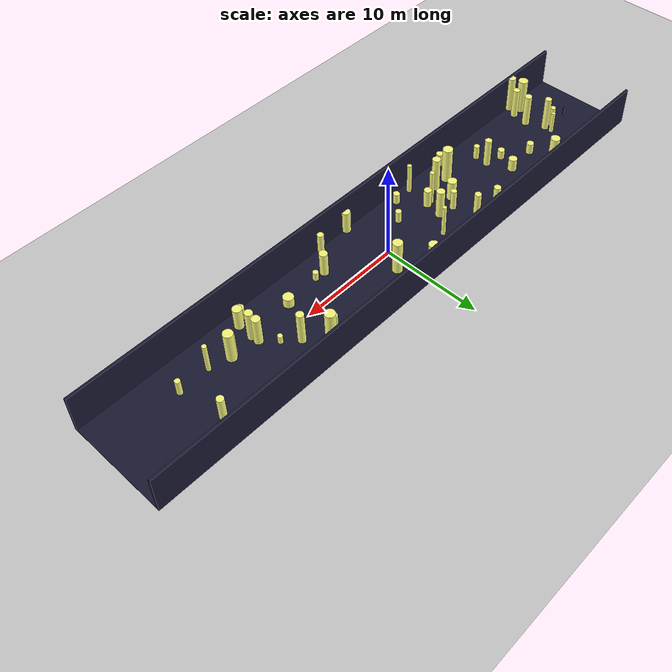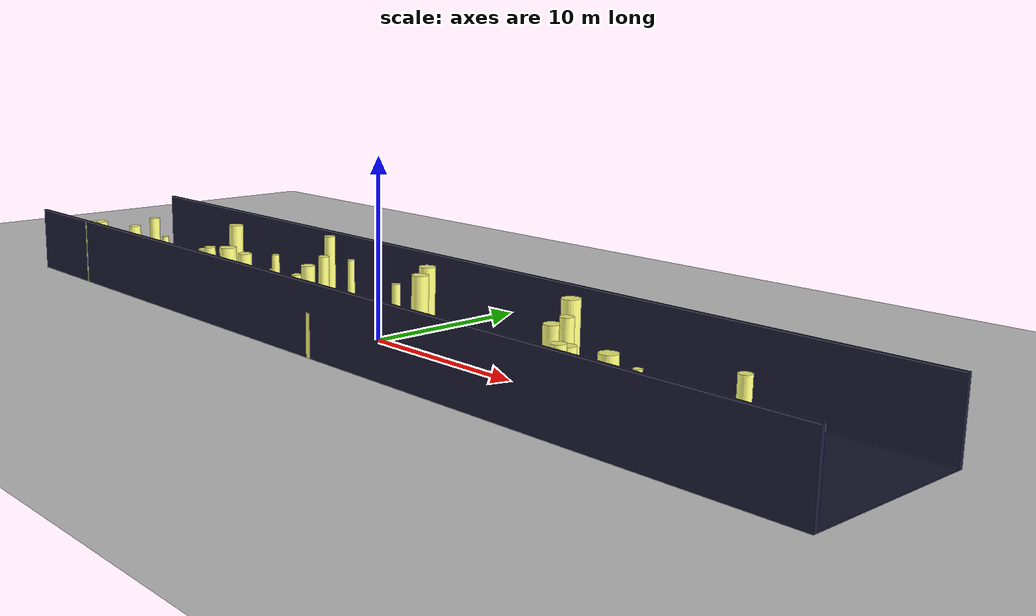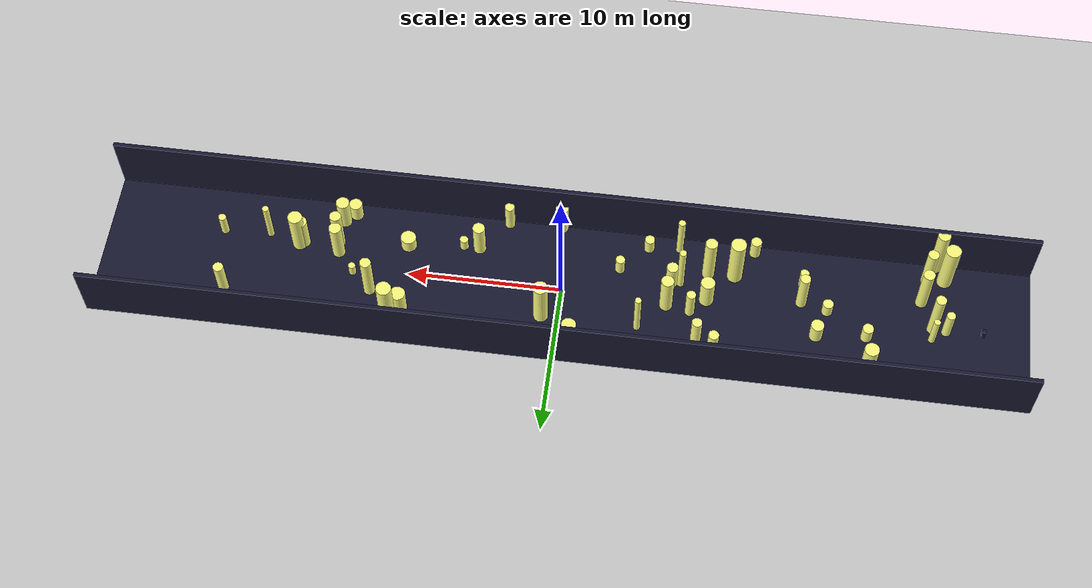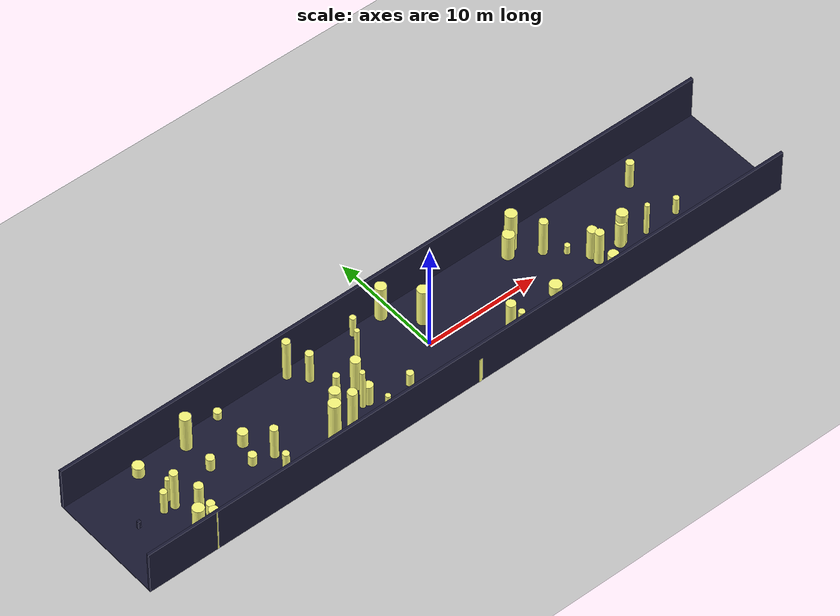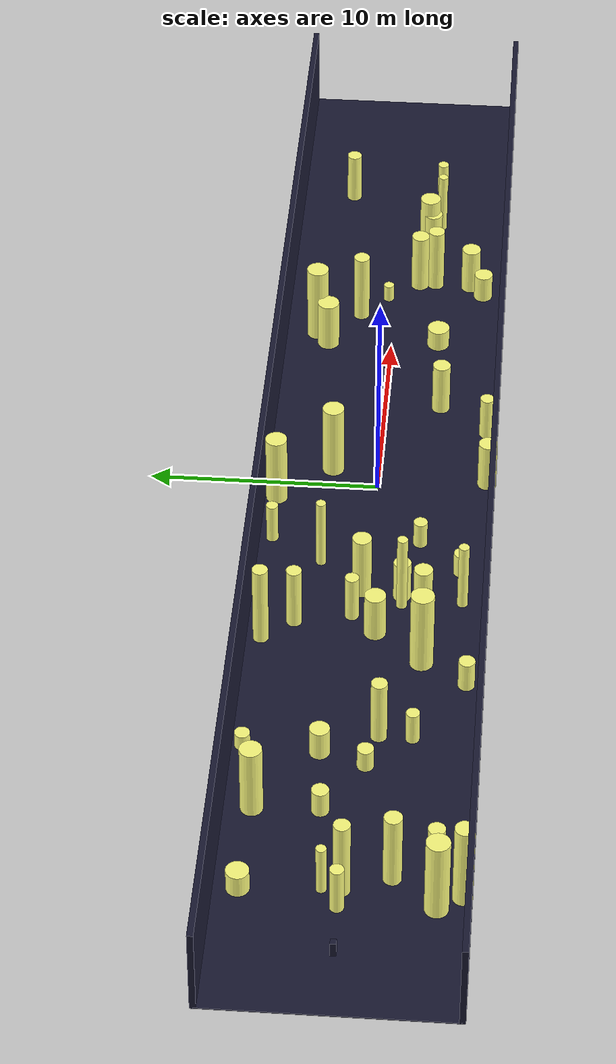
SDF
<?xml version="1.0"?>
<sdf version="1.4">
  <world name="default">
    <gui>
      <camera name="user_camera">
        <pose>-20 -30 40 0 0.66 0.83</pose>
      </camera>
    </gui>
    <include>
      <uri>model://ground_plane</uri>
    </include>
    <include>
      <uri>model://sun</uri>
    </include>
    <scene>
      <shadows>0</shadows>
    </scene>
    <model name="forest">
      <static>true</static>
      <link name="cylinder0">
        <pose>-24.68209057322628 0.03149215675984607 1.0975716134562221 0 0 0 </pose>
        <visual name="visual">
          <geometry>
            <cylinder>
              <radius>0.28339743306230253</radius>
              <length>2.1951432269124442</length>
            </cylinder>
          </geometry>
          <material>
            <ambient>0.6 0.6 0.6 1</ambient>
            <diffuse>1 1 0.5 1</diffuse>
            <specular>0 0 0</specular>
            <emissive>0 0 0 1</emissive>
          </material>
        </visual>
        <collision name="collision">
          <geometry>
            <cylinder>
              <radius>0.28339743306230253</radius>
              <length>2.1951432269124442</length>
            </cylinder>
          </geometry>
          <max_contacts>0</max_contacts>
        </collision>
      </link>
      <link name="cylinder1">
        <pose>14.812804317803192 -1.8058272760618967 1.5895208494235133 0 0 0 </pose>
        <visual name="visual">
          <geometry>
            <cylinder>
              <radius>0.3730601491276073</radius>
              <length>3.1790416988470267</length>
            </cylinder>
          </geometry>
          <material>
            <ambient>0.6 0.6 0.6 1</ambient>
            <diffuse>1 1 0.5 1</diffuse>
            <specular>0 0 0</specular>
            <emissive>0 0 0 1</emissive>
          </material>
        </visual>
        <collision name="collision">
          <geometry>
            <cylinder>
              <radius>0.3730601491276073</radius>
              <length>3.1790416988470267</length>
            </cylinder>
          </geometry>
          <max_contacts>0</max_contacts>
        </collision>
      </link>
      <link name="cylinder2">
        <pose>-19.662361147899844 1.042955078648066 0.617415073956711 0 0 0 </pose>
        <visual name="visual">
          <geometry>
            <cylinder>
              <radius>0.3552425914240961</radius>
              <length>1.234830147913422</length>
            </cylinder>
          </geometry>
          <material>
            <ambient>0.6 0.6 0.6 1</ambient>
            <diffuse>1 1 0.5 1</diffuse>
            <specular>0 0 0</specular>
            <emissive>0 0 0 1</emissive>
          </material>
        </visual>
        <collision name="collision">
          <geometry>
            <cylinder>
              <radius>0.3552425914240961</radius>
              <length>1.234830147913422</length>
            </cylinder>
          </geometry>
          <max_contacts>0</max_contacts>
        </collision>
      </link>
      <link name="cylinder3">
        <pose>-9.30893673339363 -2.4223670456150117 1.8579170193508763 0 0 0 </pose>
        <visual name="visual">
          <geometry>
            <cylinder>
              <radius>0.39260315202224394</radius>
              <length>3.7158340387017526</length>
            </cylinder>
          </geometry>
          <material>
            <ambient>0.6 0.6 0.6 1</ambient>
            <diffuse>1 1 0.5 1</diffuse>
            <specular>0 0 0</specular>
            <emissive>0 0 0 1</emissive>
          </material>
        </visual>
        <collision name="collision">
          <geometry>
            <cylinder>
              <radius>0.39260315202224394</radius>
              <length>3.7158340387017526</length>
            </cylinder>
          </geometry>
          <max_contacts>0</max_contacts>
        </collision>
      </link>
      <link name="cylinder4">
        <pose>-16.471168768786697 1.3123319694057143 0.710167357029526 0 0 0 </pose>
        <visual name="visual">
          <geometry>
            <cylinder>
              <radius>0.4188599328273058</radius>
              <length>1.420334714059052</length>
            </cylinder>
          </geometry>
          <material>
            <ambient>0.6 0.6 0.6 1</ambient>
            <diffuse>1 1 0.5 1</diffuse>
            <specular>0 0 0</specular>
            <emissive>0 0 0 1</emissive>
          </material>
        </visual>
        <collision name="collision">
          <geometry>
            <cylinder>
              <radius>0.4188599328273058</radius>
              <length>1.420334714059052</length>
            </cylinder>
          </geometry>
          <max_contacts>0</max_contacts>
        </collision>
      </link>
      <link name="cylinder5">
        <pose>-11.017880960898497 -2.4814989270715704 1.9169428343375152 0 0 0 </pose>
        <visual name="visual">
          <geometry>
            <cylinder>
              <radius>0.4923476053995425</radius>
              <length>3.8338856686750304</length>
            </cylinder>
          </geometry>
          <material>
            <ambient>0.6 0.6 0.6 1</ambient>
            <diffuse>1 1 0.5 1</diffuse>
            <specular>0 0 0</specular>
            <emissive>0 0 0 1</emissive>
          </material>
        </visual>
        <collision name="collision">
          <geometry>
            <cylinder>
              <radius>0.4923476053995425</radius>
              <length>3.8338856686750304</length>
            </cylinder>
          </geometry>
          <max_contacts>0</max_contacts>
        </collision>
      </link>
      <link name="cylinder6">
        <pose>14.062974609296575 -4.0686457576338055 0.6735063992449166 0 0 0 </pose>
        <visual name="visual">
          <geometry>
            <cylinder>
              <radius>0.41914841630555427</radius>
              <length>1.3470127984898332</length>
            </cylinder>
          </geometry>
          <material>
            <ambient>0.6 0.6 0.6 1</ambient>
            <diffuse>1 1 0.5 1</diffuse>
            <specular>0 0 0</specular>
            <emissive>0 0 0 1</emissive>
          </material>
        </visual>
        <collision name="collision">
          <geometry>
            <cylinder>
              <radius>0.41914841630555427</radius>
              <length>1.3470127984898332</length>
            </cylinder>
          </geometry>
          <max_contacts>0</max_contacts>
        </collision>
      </link>
      <link name="cylinder7">
        <pose>-6.811399191386474 0.2627530712359958 1.523945528306348 0 0 0 </pose>
        <visual name="visual">
          <geometry>
            <cylinder>
              <radius>0.4100596907281074</radius>
              <length>3.047891056612696</length>
            </cylinder>
          </geometry>
          <material>
            <ambient>0.6 0.6 0.6 1</ambient>
            <diffuse>1 1 0.5 1</diffuse>
            <specular>0 0 0</specular>
            <emissive>0 0 0 1</emissive>
          </material>
        </visual>
        <collision name="collision">
          <geometry>
            <cylinder>
              <radius>0.4100596907281074</radius>
              <length>3.047891056612696</length>
            </cylinder>
          </geometry>
          <max_contacts>0</max_contacts>
        </collision>
      </link>
      <link name="cylinder8">
        <pose>-17.08744666915372 -0.5638785339567018 0.5236371937488584 0 0 0 </pose>
        <visual name="visual">
          <geometry>
            <cylinder>
              <radius>0.34301819002298817</radius>
              <length>1.0472743874977168</length>
            </cylinder>
          </geometry>
          <material>
            <ambient>0.6 0.6 0.6 1</ambient>
            <diffuse>1 1 0.5 1</diffuse>
            <specular>0 0 0</specular>
            <emissive>0 0 0 1</emissive>
          </material>
        </visual>
        <collision name="collision">
          <geometry>
            <cylinder>
              <radius>0.34301819002298817</radius>
              <length>1.0472743874977168</length>
            </cylinder>
          </geometry>
          <max_contacts>0</max_contacts>
        </collision>
      </link>
      <link name="cylinder9">
        <pose>-8.902673212294427 2.9561425788040285 1.4689201882891043 0 0 0 </pose>
        <visual name="visual">
          <geometry>
            <cylinder>
              <radius>0.3267297042415722</radius>
              <length>2.9378403765782086</length>
            </cylinder>
          </geometry>
          <material>
            <ambient>0.6 0.6 0.6 1</ambient>
            <diffuse>1 1 0.5 1</diffuse>
            <specular>0 0 0</specular>
            <emissive>0 0 0 1</emissive>
          </material>
        </visual>
        <collision name="collision">
          <geometry>
            <cylinder>
              <radius>0.3267297042415722</radius>
              <length>2.9378403765782086</length>
            </cylinder>
          </geometry>
          <max_contacts>0</max_contacts>
        </collision>
      </link>
      <link name="cylinder10">
        <pose>-3.711612924843198 4.318975852244831 0.9592189401886978 0 0 0 </pose>
        <visual name="visual">
          <geometry>
            <cylinder>
              <radius>0.2582937046759509</radius>
              <length>1.9184378803773956</length>
            </cylinder>
          </geometry>
          <material>
            <ambient>0.6 0.6 0.6 1</ambient>
            <diffuse>1 1 0.5 1</diffuse>
            <specular>0 0 0</specular>
            <emissive>0 0 0 1</emissive>
          </material>
        </visual>
        <collision name="collision">
          <geometry>
            <cylinder>
              <radius>0.2582937046759509</radius>
              <length>1.9184378803773956</length>
            </cylinder>
          </geometry>
          <max_contacts>0</max_contacts>
        </collision>
      </link>
      <link name="cylinder11">
        <pose>-1.0297529537287247 4.359280237133879 1.6819043905927533 0 0 0 </pose>
        <visual name="visual">
          <geometry>
            <cylinder>
              <radius>0.46939944299379127</radius>
              <length>3.3638087811855066</length>
            </cylinder>
          </geometry>
          <material>
            <ambient>0.6 0.6 0.6 1</ambient>
            <diffuse>1 1 0.5 1</diffuse>
            <specular>0 0 0</specular>
            <emissive>0 0 0 1</emissive>
          </material>
        </visual>
        <collision name="collision">
          <geometry>
            <cylinder>
              <radius>0.46939944299379127</radius>
              <length>3.3638087811855066</length>
            </cylinder>
          </geometry>
          <max_contacts>0</max_contacts>
        </collision>
      </link>
      <link name="cylinder12">
        <pose>17.36374056956663 -1.3924382661848913 1.599541870702964 0 0 0 </pose>
        <visual name="visual">
          <geometry>
            <cylinder>
              <radius>0.468550339068526</radius>
              <length>3.199083741405928</length>
            </cylinder>
          </geometry>
          <material>
            <ambient>0.6 0.6 0.6 1</ambient>
            <diffuse>1 1 0.5 1</diffuse>
            <specular>0 0 0</specular>
            <emissive>0 0 0 1</emissive>
          </material>
        </visual>
        <collision name="collision">
          <geometry>
            <cylinder>
              <radius>0.468550339068526</radius>
              <length>3.199083741405928</length>
            </cylinder>
          </geometry>
          <max_contacts>0</max_contacts>
        </collision>
      </link>
      <link name="cylinder13">
        <pose>13.561815000261717 0.3308103432766991 0.4387331433053939 0 0 0 </pose>
        <visual name="visual">
          <geometry>
            <cylinder>
              <radius>0.23002546899297252</radius>
              <length>0.8774662866107878</length>
            </cylinder>
          </geometry>
          <material>
            <ambient>0.6 0.6 0.6 1</ambient>
            <diffuse>1 1 0.5 1</diffuse>
            <specular>0 0 0</specular>
            <emissive>0 0 0 1</emissive>
          </material>
        </visual>
        <collision name="collision">
          <geometry>
            <cylinder>
              <radius>0.23002546899297252</radius>
              <length>0.8774662866107878</length>
            </cylinder>
          </geometry>
          <max_contacts>0</max_contacts>
        </collision>
      </link>
      <link name="cylinder14">
        <pose>-7.016129958255203 -1.4549451090831744 0.986172092179655 0 0 0 </pose>
        <visual name="visual">
          <geometry>
            <cylinder>
              <radius>0.37660026000891966</radius>
              <length>1.97234418435931</length>
            </cylinder>
          </geometry>
          <material>
            <ambient>0.6 0.6 0.6 1</ambient>
            <diffuse>1 1 0.5 1</diffuse>
            <specular>0 0 0</specular>
            <emissive>0 0 0 1</emissive>
          </material>
        </visual>
        <collision name="collision">
          <geometry>
            <cylinder>
              <radius>0.37660026000891966</radius>
              <length>1.97234418435931</length>
            </cylinder>
          </geometry>
          <max_contacts>0</max_contacts>
        </collision>
      </link>
      <link name="cylinder15">
        <pose>-23.796954244823958 0.6931654495719961 1.1706726593069412 0 0 0 </pose>
        <visual name="visual">
          <geometry>
            <cylinder>
              <radius>0.20993528087805935</radius>
              <length>2.3413453186138824</length>
            </cylinder>
          </geometry>
          <material>
            <ambient>0.6 0.6 0.6 1</ambient>
            <diffuse>1 1 0.5 1</diffuse>
            <specular>0 0 0</specular>
            <emissive>0 0 0 1</emissive>
          </material>
        </visual>
        <collision name="collision">
          <geometry>
            <cylinder>
              <radius>0.20993528087805935</radius>
              <length>2.3413453186138824</length>
            </cylinder>
          </geometry>
          <max_contacts>0</max_contacts>
        </collision>
      </link>
      <link name="cylinder16">
        <pose>10.016608727388856 2.9153203355303026 1.2012818049853968 0 0 0 </pose>
        <visual name="visual">
          <geometry>
            <cylinder>
              <radius>0.4895018477401675</radius>
              <length>2.4025636099707937</length>
            </cylinder>
          </geometry>
          <material>
            <ambient>0.6 0.6 0.6 1</ambient>
            <diffuse>1 1 0.5 1</diffuse>
            <specular>0 0 0</specular>
            <emissive>0 0 0 1</emissive>
          </material>
        </visual>
        <collision name="collision">
          <geometry>
            <cylinder>
              <radius>0.4895018477401675</radius>
              <length>2.4025636099707937</length>
            </cylinder>
          </geometry>
          <max_contacts>0</max_contacts>
        </collision>
      </link>
      <link name="cylinder17">
        <pose>-15.43424573432639 -2.3578570397519325 0.7659917793061239 0 0 0 </pose>
        <visual name="visual">
          <geometry>
            <cylinder>
              <radius>0.2835076830958642</radius>
              <length>1.5319835586122479</length>
            </cylinder>
          </geometry>
          <material>
            <ambient>0.6 0.6 0.6 1</ambient>
            <diffuse>1 1 0.5 1</diffuse>
            <specular>0 0 0</specular>
            <emissive>0 0 0 1</emissive>
          </material>
        </visual>
        <collision name="collision">
          <geometry>
            <cylinder>
              <radius>0.2835076830958642</radius>
              <length>1.5319835586122479</length>
            </cylinder>
          </geometry>
          <max_contacts>0</max_contacts>
        </collision>
      </link>
      <link name="cylinder18">
        <pose>-19.71533183569509 3.746903429196516 1.6724670781616389 0 0 0 </pose>
        <visual name="visual">
          <geometry>
            <cylinder>
              <radius>0.46201681337978795</radius>
              <length>3.3449341563232777</length>
            </cylinder>
          </geometry>
          <material>
            <ambient>0.6 0.6 0.6 1</ambient>
            <diffuse>1 1 0.5 1</diffuse>
            <specular>0 0 0</specular>
            <emissive>0 0 0 1</emissive>
          </material>
        </visual>
        <collision name="collision">
          <geometry>
            <cylinder>
              <radius>0.46201681337978795</radius>
              <length>3.3449341563232777</length>
            </cylinder>
          </geometry>
          <max_contacts>0</max_contacts>
        </collision>
      </link>
      <link name="cylinder19">
        <pose>-24.485627864646283 -3.7661841466793824 1.880556697639487 0 0 0 </pose>
        <visual name="visual">
          <geometry>
            <cylinder>
              <radius>0.48070993028390074</radius>
              <length>3.761113395278974</length>
            </cylinder>
          </geometry>
          <material>
            <ambient>0.6 0.6 0.6 1</ambient>
            <diffuse>1 1 0.5 1</diffuse>
            <specular>0 0 0</specular>
            <emissive>0 0 0 1</emissive>
          </material>
        </visual>
        <collision name="collision">
          <geometry>
            <cylinder>
              <radius>0.48070993028390074</radius>
              <length>3.761113395278974</length>
            </cylinder>
          </geometry>
          <max_contacts>0</max_contacts>
        </collision>
      </link>
      <link name="cylinder20">
        <pose>-15.40127307244793 -0.9927102290423377 1.522236223085323 0 0 0 </pose>
        <visual name="visual">
          <geometry>
            <cylinder>
              <radius>0.33640663840990837</radius>
              <length>3.044472446170646</length>
            </cylinder>
          </geometry>
          <material>
            <ambient>0.6 0.6 0.6 1</ambient>
            <diffuse>1 1 0.5 1</diffuse>
            <specular>0 0 0</specular>
            <emissive>0 0 0 1</emissive>
          </material>
        </visual>
        <collision name="collision">
          <geometry>
            <cylinder>
              <radius>0.33640663840990837</radius>
              <length>3.044472446170646</length>
            </cylinder>
          </geometry>
          <max_contacts>0</max_contacts>
        </collision>
      </link>
      <link name="cylinder21">
        <pose>-23.965216671267076 3.8940050742450545 0.5299585281966738 0 0 0 </pose>
        <visual name="visual">
          <geometry>
            <cylinder>
              <radius>0.4683088896542107</radius>
              <length>1.0599170563933475</length>
            </cylinder>
          </geometry>
          <material>
            <ambient>0.6 0.6 0.6 1</ambient>
            <diffuse>1 1 0.5 1</diffuse>
            <specular>0 0 0</specular>
            <emissive>0 0 0 1</emissive>
          </material>
        </visual>
        <collision name="collision">
          <geometry>
            <cylinder>
              <radius>0.4683088896542107</radius>
              <length>1.0599170563933475</length>
            </cylinder>
          </geometry>
          <max_contacts>0</max_contacts>
        </collision>
      </link>
      <link name="cylinder22">
        <pose>21.616701851488614 2.498194542077207 1.265375723922642 0 0 0 </pose>
        <visual name="visual">
          <geometry>
            <cylinder>
              <radius>0.3342152572709022</radius>
              <length>2.530751447845284</length>
            </cylinder>
          </geometry>
          <material>
            <ambient>0.6 0.6 0.6 1</ambient>
            <diffuse>1 1 0.5 1</diffuse>
            <specular>0 0 0</specular>
            <emissive>0 0 0 1</emissive>
          </material>
        </visual>
        <collision name="collision">
          <geometry>
            <cylinder>
              <radius>0.3342152572709022</radius>
              <length>2.530751447845284</length>
            </cylinder>
          </geometry>
          <max_contacts>0</max_contacts>
        </collision>
      </link>
      <link name="cylinder23">
        <pose>-7.581748480946377 -1.4677054395559352 1.882855626031397 0 0 0 </pose>
        <visual name="visual">
          <geometry>
            <cylinder>
              <radius>0.2249750265974071</radius>
              <length>3.765711252062794</length>
            </cylinder>
          </geometry>
          <material>
            <ambient>0.6 0.6 0.6 1</ambient>
            <diffuse>1 1 0.5 1</diffuse>
            <specular>0 0 0</specular>
            <emissive>0 0 0 1</emissive>
          </material>
        </visual>
        <collision name="collision">
          <geometry>
            <cylinder>
              <radius>0.2249750265974071</radius>
              <length>3.765711252062794</length>
            </cylinder>
          </geometry>
          <max_contacts>0</max_contacts>
        </collision>
      </link>
      <link name="cylinder24">
        <pose>-7.314230726227823 -4.019657505197301 1.6395750106147813 0 0 0 </pose>
        <visual name="visual">
          <geometry>
            <cylinder>
              <radius>0.22274047730265356</radius>
              <length>3.2791500212295626</length>
            </cylinder>
          </geometry>
          <material>
            <ambient>0.6 0.6 0.6 1</ambient>
            <diffuse>1 1 0.5 1</diffuse>
            <specular>0 0 0</specular>
            <emissive>0 0 0 1</emissive>
          </material>
        </visual>
        <collision name="collision">
          <geometry>
            <cylinder>
              <radius>0.22274047730265356</radius>
              <length>3.2791500212295626</length>
            </cylinder>
          </geometry>
          <max_contacts>0</max_contacts>
        </collision>
      </link>
      <link name="cylinder25">
        <pose>12.238931166068092 1.5278645118902299 1.6991539724854103 0 0 0 </pose>
        <visual name="visual">
          <geometry>
            <cylinder>
              <radius>0.35876759377819567</radius>
              <length>3.3983079449708207</length>
            </cylinder>
          </geometry>
          <material>
            <ambient>0.6 0.6 0.6 1</ambient>
            <diffuse>1 1 0.5 1</diffuse>
            <specular>0 0 0</specular>
            <emissive>0 0 0 1</emissive>
          </material>
        </visual>
        <collision name="collision">
          <geometry>
            <cylinder>
              <radius>0.35876759377819567</radius>
              <length>3.3983079449708207</length>
            </cylinder>
          </geometry>
          <max_contacts>0</max_contacts>
        </collision>
      </link>
      <link name="cylinder26">
        <pose>-3.6084624720997382 -2.0473453054490465 0.6444954420409565 0 0 0 </pose>
        <visual name="visual">
          <geometry>
            <cylinder>
              <radius>0.3002855925315295</radius>
              <length>1.288990884081913</length>
            </cylinder>
          </geometry>
          <material>
            <ambient>0.6 0.6 0.6 1</ambient>
            <diffuse>1 1 0.5 1</diffuse>
            <specular>0 0 0</specular>
            <emissive>0 0 0 1</emissive>
          </material>
        </visual>
        <collision name="collision">
          <geometry>
            <cylinder>
              <radius>0.3002855925315295</radius>
              <length>1.288990884081913</length>
            </cylinder>
          </geometry>
          <max_contacts>0</max_contacts>
        </collision>
      </link>
      <link name="cylinder27">
        <pose>3.9340369435991107 -4.59838393838409 1.0598323529901883 0 0 0 </pose>
        <visual name="visual">
          <geometry>
            <cylinder>
              <radius>0.30868014018656487</radius>
              <length>2.1196647059803766</length>
            </cylinder>
          </geometry>
          <material>
            <ambient>0.6 0.6 0.6 1</ambient>
            <diffuse>1 1 0.5 1</diffuse>
            <specular>0 0 0</specular>
            <emissive>0 0 0 1</emissive>
          </material>
        </visual>
        <collision name="collision">
          <geometry>
            <cylinder>
              <radius>0.30868014018656487</radius>
              <length>2.1196647059803766</length>
            </cylinder>
          </geometry>
          <max_contacts>0</max_contacts>
        </collision>
      </link>
      <link name="cylinder28">
        <pose>-5.340411332801846 -3.870835418848163 0.5822532718245208 0 0 0 </pose>
        <visual name="visual">
          <geometry>
            <cylinder>
              <radius>0.32172609004363895</radius>
              <length>1.1645065436490416</length>
            </cylinder>
          </geometry>
          <material>
            <ambient>0.6 0.6 0.6 1</ambient>
            <diffuse>1 1 0.5 1</diffuse>
            <specular>0 0 0</specular>
            <emissive>0 0 0 1</emissive>
          </material>
        </visual>
        <collision name="collision">
          <geometry>
            <cylinder>
              <radius>0.32172609004363895</radius>
              <length>1.1645065436490416</length>
            </cylinder>
          </geometry>
          <max_contacts>0</max_contacts>
        </collision>
      </link>
      <link name="cylinder29">
        <pose>-23.85964304244268 -4.735132068156906 1.9665596039791742 0 0 0 </pose>
        <visual name="visual">
          <geometry>
            <cylinder>
              <radius>0.3978263578643564</radius>
              <length>3.9331192079583484</length>
            </cylinder>
          </geometry>
          <material>
            <ambient>0.6 0.6 0.6 1</ambient>
            <diffuse>1 1 0.5 1</diffuse>
            <specular>0 0 0</specular>
            <emissive>0 0 0 1</emissive>
          </material>
        </visual>
        <collision name="collision">
          <geometry>
            <cylinder>
              <radius>0.3978263578643564</radius>
              <length>3.9331192079583484</length>
            </cylinder>
          </geometry>
          <max_contacts>0</max_contacts>
        </collision>
      </link>
      <link name="cylinder30">
        <pose>-8.365644834713294 0.5721554008466709 1.108848815262442 0 0 0 </pose>
        <visual name="visual">
          <geometry>
            <cylinder>
              <radius>0.29776664159679933</radius>
              <length>2.217697630524884</length>
            </cylinder>
          </geometry>
          <material>
            <ambient>0.6 0.6 0.6 1</ambient>
            <diffuse>1 1 0.5 1</diffuse>
            <specular>0 0 0</specular>
            <emissive>0 0 0 1</emissive>
          </material>
        </visual>
        <collision name="collision">
          <geometry>
            <cylinder>
              <radius>0.29776664159679933</radius>
              <length>2.217697630524884</length>
            </cylinder>
          </geometry>
          <max_contacts>0</max_contacts>
        </collision>
      </link>
      <link name="cylinder31">
        <pose>14.734313600216772 -3.4546986685104466 1.1402169336196002 0 0 0 </pose>
        <visual name="visual">
          <geometry>
            <cylinder>
              <radius>0.4297429333497811</radius>
              <length>2.2804338672392004</length>
            </cylinder>
          </geometry>
          <material>
            <ambient>0.6 0.6 0.6 1</ambient>
            <diffuse>1 1 0.5 1</diffuse>
            <specular>0 0 0</specular>
            <emissive>0 0 0 1</emissive>
          </material>
        </visual>
        <collision name="collision">
          <geometry>
            <cylinder>
              <radius>0.4297429333497811</radius>
              <length>2.2804338672392004</length>
            </cylinder>
          </geometry>
          <max_contacts>0</max_contacts>
        </collision>
      </link>
      <link name="cylinder32">
        <pose>-9.982117213752412 4.257828668383256 1.9400311204999254 0 0 0 </pose>
        <visual name="visual">
          <geometry>
            <cylinder>
              <radius>0.33119780750770567</radius>
              <length>3.880062240999851</length>
            </cylinder>
          </geometry>
          <material>
            <ambient>0.6 0.6 0.6 1</ambient>
            <diffuse>1 1 0.5 1</diffuse>
            <specular>0 0 0</specular>
            <emissive>0 0 0 1</emissive>
          </material>
        </visual>
        <collision name="collision">
          <geometry>
            <cylinder>
              <radius>0.33119780750770567</radius>
              <length>3.880062240999851</length>
            </cylinder>
          </geometry>
          <max_contacts>0</max_contacts>
        </collision>
      </link>
      <link name="cylinder33">
        <pose>-12.201660203311254 -4.385826038852216 0.7233040018348355 0 0 0 </pose>
        <visual name="visual">
          <geometry>
            <cylinder>
              <radius>0.34518236010818215</radius>
              <length>1.446608003669671</length>
            </cylinder>
          </geometry>
          <material>
            <ambient>0.6 0.6 0.6 1</ambient>
            <diffuse>1 1 0.5 1</diffuse>
            <specular>0 0 0</specular>
            <emissive>0 0 0 1</emissive>
          </material>
        </visual>
        <collision name="collision">
          <geometry>
            <cylinder>
              <radius>0.34518236010818215</radius>
              <length>1.446608003669671</length>
            </cylinder>
          </geometry>
          <max_contacts>0</max_contacts>
        </collision>
      </link>
      <link name="cylinder34">
        <pose>1.039914763097844 2.0328243775685255 1.7618557261310794 0 0 0 </pose>
        <visual name="visual">
          <geometry>
            <cylinder>
              <radius>0.4713745110700282</radius>
              <length>3.523711452262159</length>
            </cylinder>
          </geometry>
          <material>
            <ambient>0.6 0.6 0.6 1</ambient>
            <diffuse>1 1 0.5 1</diffuse>
            <specular>0 0 0</specular>
            <emissive>0 0 0 1</emissive>
          </material>
        </visual>
        <collision name="collision">
          <geometry>
            <cylinder>
              <radius>0.4713745110700282</radius>
              <length>3.523711452262159</length>
            </cylinder>
          </geometry>
          <max_contacts>0</max_contacts>
        </collision>
      </link>
      <link name="cylinder35">
        <pose>10.713433492503825 3.4521917606905266 1.8713623926220566 0 0 0 </pose>
        <visual name="visual">
          <geometry>
            <cylinder>
              <radius>0.49299015640320254</radius>
              <length>3.7427247852441132</length>
            </cylinder>
          </geometry>
          <material>
            <ambient>0.6 0.6 0.6 1</ambient>
            <diffuse>1 1 0.5 1</diffuse>
            <specular>0 0 0</specular>
            <emissive>0 0 0 1</emissive>
          </material>
        </visual>
        <collision name="collision">
          <geometry>
            <cylinder>
              <radius>0.49299015640320254</radius>
              <length>3.7427247852441132</length>
            </cylinder>
          </geometry>
          <max_contacts>0</max_contacts>
        </collision>
      </link>
      <link name="cylinder36">
        <pose>5.636908911235256 -2.485652178703468 1.2642253452426147 0 0 0 </pose>
        <visual name="visual">
          <geometry>
            <cylinder>
              <radius>0.3939360031982997</radius>
              <length>2.5284506904852293</length>
            </cylinder>
          </geometry>
          <material>
            <ambient>0.6 0.6 0.6 1</ambient>
            <diffuse>1 1 0.5 1</diffuse>
            <specular>0 0 0</specular>
            <emissive>0 0 0 1</emissive>
          </material>
        </visual>
        <collision name="collision">
          <geometry>
            <cylinder>
              <radius>0.3939360031982997</radius>
              <length>2.5284506904852293</length>
            </cylinder>
          </geometry>
          <max_contacts>0</max_contacts>
        </collision>
      </link>
      <link name="cylinder37">
        <pose>-9.348712948396571 -0.45403970753923417 1.0916190912884083 0 0 0 </pose>
        <visual name="visual">
          <geometry>
            <cylinder>
              <radius>0.45770992967982277</radius>
              <length>2.1832381825768166</length>
            </cylinder>
          </geometry>
          <material>
            <ambient>0.6 0.6 0.6 1</ambient>
            <diffuse>1 1 0.5 1</diffuse>
            <specular>0 0 0</specular>
            <emissive>0 0 0 1</emissive>
          </material>
        </visual>
        <collision name="collision">
          <geometry>
            <cylinder>
              <radius>0.45770992967982277</radius>
              <length>2.1832381825768166</length>
            </cylinder>
          </geometry>
          <max_contacts>0</max_contacts>
        </collision>
      </link>
      <link name="cylinder38">
        <pose>-16.29020895469278 4.436808364034002 0.38954597316122747 0 0 0 </pose>
        <visual name="visual">
          <geometry>
            <cylinder>
              <radius>0.32111957875946756</radius>
              <length>0.7790919463224549</length>
            </cylinder>
          </geometry>
          <material>
            <ambient>0.6 0.6 0.6 1</ambient>
            <diffuse>1 1 0.5 1</diffuse>
            <specular>0 0 0</specular>
            <emissive>0 0 0 1</emissive>
          </material>
        </visual>
        <collision name="collision">
          <geometry>
            <cylinder>
              <radius>0.32111957875946756</radius>
              <length>0.7790919463224549</length>
            </cylinder>
          </geometry>
          <max_contacts>0</max_contacts>
        </collision>
      </link>
      <link name="cylinder39">
        <pose>10.267055272858236 -2.148720193010425 0.5206017991182029 0 0 0 </pose>
        <visual name="visual">
          <geometry>
            <cylinder>
              <radius>0.4985302460972733</radius>
              <length>1.0412035982364058</length>
            </cylinder>
          </geometry>
          <material>
            <ambient>0.6 0.6 0.6 1</ambient>
            <diffuse>1 1 0.5 1</diffuse>
            <specular>0 0 0</specular>
            <emissive>0 0 0 1</emissive>
          </material>
        </visual>
        <collision name="collision">
          <geometry>
            <cylinder>
              <radius>0.4985302460972733</radius>
              <length>1.0412035982364058</length>
            </cylinder>
          </geometry>
          <max_contacts>0</max_contacts>
        </collision>
      </link>
      <link name="cylinder40">
        <pose>-5.1272211094969755 2.113809368845086 1.7039731258687265 0 0 0 </pose>
        <visual name="visual">
          <geometry>
            <cylinder>
              <radius>0.20800297468313614</radius>
              <length>3.407946251737453</length>
            </cylinder>
          </geometry>
          <material>
            <ambient>0.6 0.6 0.6 1</ambient>
            <diffuse>1 1 0.5 1</diffuse>
            <specular>0 0 0</specular>
            <emissive>0 0 0 1</emissive>
          </material>
        </visual>
        <collision name="collision">
          <geometry>
            <cylinder>
              <radius>0.20800297468313614</radius>
              <length>3.407946251737453</length>
            </cylinder>
          </geometry>
          <max_contacts>0</max_contacts>
        </collision>
      </link>
      <link name="cylinder41">
        <pose>-23.05592645795473 -1.9932888550752437 1.736658967137263 0 0 0 </pose>
        <visual name="visual">
          <geometry>
            <cylinder>
              <radius>0.36951061657816353</radius>
              <length>3.473317934274526</length>
            </cylinder>
          </geometry>
          <material>
            <ambient>0.6 0.6 0.6 1</ambient>
            <diffuse>1 1 0.5 1</diffuse>
            <specular>0 0 0</specular>
            <emissive>0 0 0 1</emissive>
          </material>
        </visual>
        <collision name="collision">
          <geometry>
            <cylinder>
              <radius>0.36951061657816353</radius>
              <length>3.473317934274526</length>
            </cylinder>
          </geometry>
          <max_contacts>0</max_contacts>
        </collision>
      </link>
      <link name="cylinder42">
        <pose>22.434605746352354 -1.8011734180231054 0.8164602041613434 0 0 0 </pose>
        <visual name="visual">
          <geometry>
            <cylinder>
              <radius>0.25327931309316654</radius>
              <length>1.6329204083226867</length>
            </cylinder>
          </geometry>
          <material>
            <ambient>0.6 0.6 0.6 1</ambient>
            <diffuse>1 1 0.5 1</diffuse>
            <specular>0 0 0</specular>
            <emissive>0 0 0 1</emissive>
          </material>
        </visual>
        <collision name="collision">
          <geometry>
            <cylinder>
              <radius>0.25327931309316654</radius>
              <length>1.6329204083226867</length>
            </cylinder>
          </geometry>
          <max_contacts>0</max_contacts>
        </collision>
      </link>
      <link name="cylinder43">
        <pose>19.404938740708026 -1.902708853640338 1.5195242270376101 0 0 0 </pose>
        <visual name="visual">
          <geometry>
            <cylinder>
              <radius>0.21366884026739374</radius>
              <length>3.0390484540752203</length>
            </cylinder>
          </geometry>
          <material>
            <ambient>0.6 0.6 0.6 1</ambient>
            <diffuse>1 1 0.5 1</diffuse>
            <specular>0 0 0</specular>
            <emissive>0 0 0 1</emissive>
          </material>
        </visual>
        <collision name="collision">
          <geometry>
            <cylinder>
              <radius>0.21366884026739374</radius>
              <length>3.0390484540752203</length>
            </cylinder>
          </geometry>
          <max_contacts>0</max_contacts>
        </collision>
      </link>
      <link name="cylinder44">
        <pose>0.5080139617693646 -4.752614595748401 1.1962249504806175 0 0 0 </pose>
        <visual name="visual">
          <geometry>
            <cylinder>
              <radius>0.40779774986288203</radius>
              <length>2.392449900961235</length>
            </cylinder>
          </geometry>
          <material>
            <ambient>0.6 0.6 0.6 1</ambient>
            <diffuse>1 1 0.5 1</diffuse>
            <specular>0 0 0</specular>
            <emissive>0 0 0 1</emissive>
          </material>
        </visual>
        <collision name="collision">
          <geometry>
            <cylinder>
              <radius>0.40779774986288203</radius>
              <length>2.392449900961235</length>
            </cylinder>
          </geometry>
          <max_contacts>0</max_contacts>
        </collision>
      </link>
      <link name="cylinder45">
        <pose>14.719917217404287 -1.0681306588328887 1.4652941810938942 0 0 0 </pose>
        <visual name="visual">
          <geometry>
            <cylinder>
              <radius>0.4019536992096572</radius>
              <length>2.9305883621877884</length>
            </cylinder>
          </geometry>
          <material>
            <ambient>0.6 0.6 0.6 1</ambient>
            <diffuse>1 1 0.5 1</diffuse>
            <specular>0 0 0</specular>
            <emissive>0 0 0 1</emissive>
          </material>
        </visual>
        <collision name="collision">
          <geometry>
            <cylinder>
              <radius>0.4019536992096572</radius>
              <length>2.9305883621877884</length>
            </cylinder>
          </geometry>
          <max_contacts>0</max_contacts>
        </collision>
      </link>
      <link name="cylinder46">
        <pose>-23.80187689299148 -0.09445334102268443 1.8518839663859472 0 0 0 </pose>
        <visual name="visual">
          <geometry>
            <cylinder>
              <radius>0.33651950105209383</radius>
              <length>3.7037679327718944</length>
            </cylinder>
          </geometry>
          <material>
            <ambient>0.6 0.6 0.6 1</ambient>
            <diffuse>1 1 0.5 1</diffuse>
            <specular>0 0 0</specular>
            <emissive>0 0 0 1</emissive>
          </material>
        </visual>
        <collision name="collision">
          <geometry>
            <cylinder>
              <radius>0.33651950105209383</radius>
              <length>3.7037679327718944</length>
            </cylinder>
          </geometry>
          <max_contacts>0</max_contacts>
        </collision>
      </link>
      <link name="cylinder47">
        <pose>17.13654473087054 -1.541588472206957 1.2402759685622338 0 0 0 </pose>
        <visual name="visual">
          <geometry>
            <cylinder>
              <radius>0.42406501987792494</radius>
              <length>2.4805519371244675</length>
            </cylinder>
          </geometry>
          <material>
            <ambient>0.6 0.6 0.6 1</ambient>
            <diffuse>1 1 0.5 1</diffuse>
            <specular>0 0 0</specular>
            <emissive>0 0 0 1</emissive>
          </material>
        </visual>
        <collision name="collision">
          <geometry>
            <cylinder>
              <radius>0.42406501987792494</radius>
              <length>2.4805519371244675</length>
            </cylinder>
          </geometry>
          <max_contacts>0</max_contacts>
        </collision>
      </link>
      <link name="cylinder48">
        <pose>-23.317174178195405 -3.665133251438527 1.6294641743603129 0 0 0 </pose>
        <visual name="visual">
          <geometry>
            <cylinder>
              <radius>0.34596708176880103</radius>
              <length>3.2589283487206258</length>
            </cylinder>
          </geometry>
          <material>
            <ambient>0.6 0.6 0.6 1</ambient>
            <diffuse>1 1 0.5 1</diffuse>
            <specular>0 0 0</specular>
            <emissive>0 0 0 1</emissive>
          </material>
        </visual>
        <collision name="collision">
          <geometry>
            <cylinder>
              <radius>0.34596708176880103</radius>
              <length>3.2589283487206258</length>
            </cylinder>
          </geometry>
          <max_contacts>0</max_contacts>
        </collision>
      </link>
      <link name="cylinder49">
        <pose>6.664025472823106 -2.519808803622924 0.4690106909928319 0 0 0 </pose>
        <visual name="visual">
          <geometry>
            <cylinder>
              <radius>0.2692277129130624</radius>
              <length>0.9380213819856638</length>
            </cylinder>
          </geometry>
          <material>
            <ambient>0.6 0.6 0.6 1</ambient>
            <diffuse>1 1 0.5 1</diffuse>
            <specular>0 0 0</specular>
            <emissive>0 0 0 1</emissive>
          </material>
        </visual>
        <collision name="collision">
          <geometry>
            <cylinder>
              <radius>0.2692277129130624</radius>
              <length>0.9380213819856638</length>
            </cylinder>
          </geometry>
          <max_contacts>0</max_contacts>
        </collision>
      </link>
      <link name="cube0">
        <pose>0 5.0 2.0 0 0 0 </pose>
        <visual name="visual">
          <geometry>
            <box>
              <size>60.0 0.25 4.0</size>
            </box>
          </geometry>
          <material>
            <ambient>0.1 0.1 0.1 1</ambient>
            <diffuse>0.1 0.1 0.2 1</diffuse>
            <specular>0 0 0</specular>
            <emissive>0 0 0 1</emissive>
          </material>
        </visual>
        <collision name="collision">
          <geometry>
            <box>
              <size>60.0 0.25 4.0</size>
            </box>
          </geometry>
          <max_contacts>0</max_contacts>
        </collision>
      </link>
      <link name="cube1">
        <pose>0 -5.0 2.0 0 0 0 </pose>
        <visual name="visual">
          <geometry>
            <box>
              <size>60.0 0.25 4.0</size>
            </box>
          </geometry>
          <material>
            <ambient>0.1 0.1 0.1 1</ambient>
            <diffuse>0.1 0.1 0.2 1</diffuse>
            <specular>0 0 0</specular>
            <emissive>0 0 0 1</emissive>
          </material>
        </visual>
        <collision name="collision">
          <geometry>
            <box>
              <size>60.0 0.25 4.0</size>
            </box>
          </geometry>
          <max_contacts>0</max_contacts>
        </collision>
      </link>
      <link name="cube2">
        <pose>0 0 0.03125 0 0 0 </pose>
        <visual name="visual">
          <geometry>
            <box>
              <size>60.0 10 0.0625</size>
            </box>
          </geometry>
          <material>
            <ambient>0.1 0.1 0.1 1</ambient>
            <diffuse>0.1 0.1 0.2 1</diffuse>
            <specular>0 0 0</specular>
            <emissive>0 0 0 1</emissive>
          </material>
        </visual>
        <collision name="collision">
          <geometry>
            <box>
              <size>60.0 10 0.0625</size>
            </box>
          </geometry>
          <max_contacts>0</max_contacts>
        </collision>
      </link>
      <link name="cube3">
        <pose>-27.0 0.0 0.25 0 0 0 </pose>
        <visual name="visual">
          <geometry>
            <box>
              <size>0.25 0.25 1.0</size>
            </box>
          </geometry>
          <material>
            <ambient>0.1 0.1 0.1 1</ambient>
            <diffuse>0.1 0.1 0.2 1</diffuse>
            <specular>0 0 0</specular>
            <emissive>0 0 0 1</emissive>
          </material>
        </visual>
        <collision name="collision">
          <geometry>
            <box>
              <size>0.25 0.25 1.0</size>
            </box>
          </geometry>
          <max_contacts>0</max_contacts>
        </collision>
      </link>
    </model>
    <!-- Physics -->
    <physics name="default_physics" default="0" type="ode">
      <max_step_size>0.004</max_step_size>
      <real_time_factor>1</real_time_factor>
      <real_time_update_rate>250</real_time_update_rate>
      <gravity>0 0 -9.8</gravity>
      <magnetic_field>6e-06 2.3e-05 -4.2e-05</magnetic_field>
      <ode>
        <solver>
          <type>quick</type>
          <iters>1000</iters>
          <sor>1.3</sor>
          <use_dynamic_moi_rescaling>0</use_dynamic_moi_rescaling>
        </solver>
        <constraints>
          <cfm>0</cfm>
          <erp>0.2</erp>
          <contact_max_correcting_vel>100</contact_max_correcting_vel>
          <contact_surface_layer>0.001</contact_surface_layer>
        </constraints>
      </ode>
    </physics>
  </world>
</sdf>
